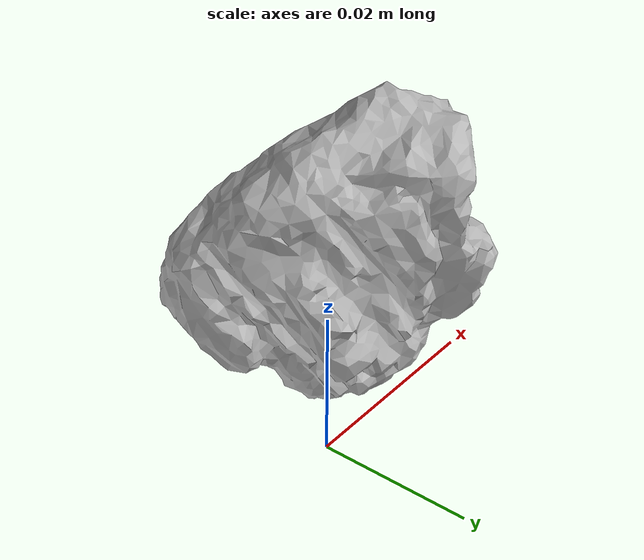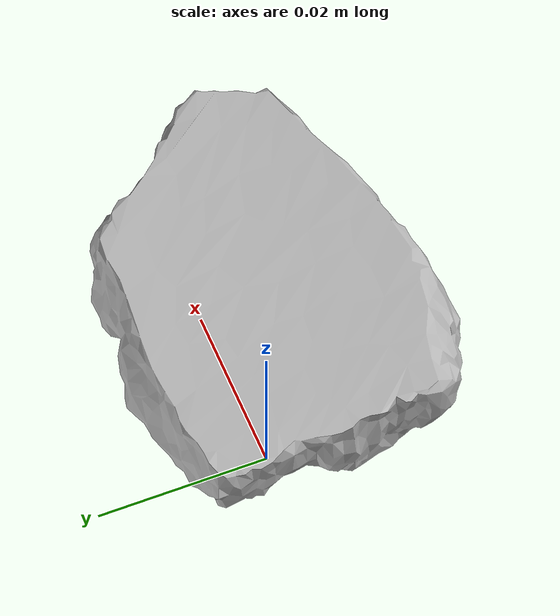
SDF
<sdf version='1.6'>
  <model name='sherd'>
    <pose frame=''>0.0 0.0 0.02 0 0 0.09966865399340417</pose>
    <link name='link'>
      <pose>0.0 0.0 0.01 0.0 0.0 0</pose>
      <inertial>
        <mass>0.01</mass>
        <inertia>
          <ixx>0.00000582</ixx>
          <ixy>0.00000052</ixy>
          <ixz>0.00000008</ixz>
          <iyy>0.00000558</iyy>
          <iyz>-0.00000007</iyz>
          <izz>0.00001046</izz>
        </inertia>
      </inertial>
      <collision name='collision'>
        <geometry>
          <mesh>
            <scale>0.831 0.642 1</scale>
            <uri>model://meshes/fragments/frag_1/meshes/model.dae</uri>
          </mesh>
        </geometry>
        <max_contacts>10</max_contacts>
        <surface>
          <friction>
            <ode>
              <mu>2000</mu>
              <mu2>1000</mu2>
            </ode>
            <torsional>
              <ode/>
            </torsional>
          </friction>
          <contact>
            <ode>
              <min_depth>0.002</min_depth>
              <kp>100000</kp>
            </ode>
          </contact>
          <bounce/>
        </surface>
      </collision>
      <visual name='visual'>
       <geometry>
          <mesh>
            <scale>0.831 0.642 1</scale>
            <uri>model://meshes/fragments/frag_1/meshes/model.dae</uri>
          </mesh>
        </geometry>
        <material>
          <script>
            <uri>model://materials/scripts</uri>
            <uri>model://materials/textures</uri>
            <name>RepeatedTexture/class47</name>
          </script>
        </material>
      </visual>
      <self_collide>0</self_collide>
      <enable_wind>0</enable_wind>
      <velocity_decay>
        <angular>0.001</angular>
      </velocity_decay>
      <kinematic>0</kinematic>
    </link>
  </model>
</sdf>
